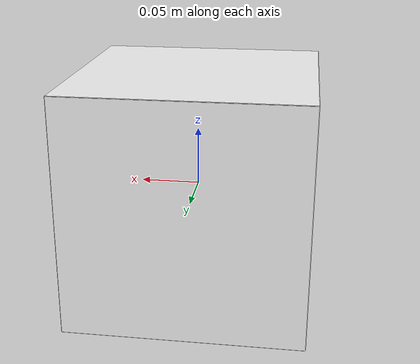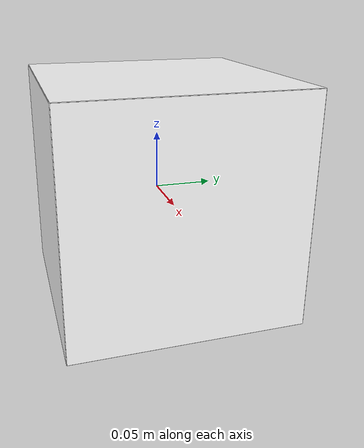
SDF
<?xml version="1.0"?>
<sdf version="1.4">
  <model name="calibration_box">
    <static>true</static>
    <link name="calibration_box_link">
      <!-- these is the box faces -->

      <!-- face0 -->
      <collision name="face0_collision">
        <pose>0 0 0.1 0 0 0</pose>
        <geometry>
          <box>
            <size>0.2 0.2 0.001</size>
          </box>
        </geometry>
      </collision>
      <visual name="face0_visual">
        <pose>0 0 0.1 0 0 0</pose>
        <geometry>
          <box>
            <size>0.2 0.2 0.001</size>
          </box>
        </geometry>
        <material>
          <ambient>1 1 1 1</ambient>
          <diffuse>1 1 1 1</diffuse>
          <script>
            <uri>model://calibration_box/materials/scripts</uri>
            <uri>model://calibration_box/materials/textures</uri>
            <name>ArcuoFace0</name>
          </script>
        </material>
      </visual>

      <!-- face1 -->
      <collision name="face1_collision">
        <pose>0 0 -0.1 0 0 0</pose>
        <geometry>
          <box>
            <size>0.2 0.2 0.001</size>
          </box>
        </geometry>
      </collision>
      <visual name="face1_visual">
        <pose>0 0 -0.1 0 0 0</pose>
        <geometry>
          <box>
            <size>0.2 0.2 0.001</size>
          </box>
        </geometry>
        <material>
          <ambient>1 1 1 1</ambient>
          <diffuse>1 1 1 1</diffuse>
          <script>
            <uri>model://calibration_box/materials/scripts</uri>
            <uri>model://calibration_box/materials/textures</uri>
            <name>ArcuoFace1</name>
          </script>
        </material>
      </visual>

      <!-- face2 -->
      <collision name="face2_collision">
        <pose>0.1 0 0 0 0 0</pose>
        <geometry>
          <box>
            <size>0.001 0.2 0.2</size>
          </box>
        </geometry>
      </collision>
      <visual name="face2_visual">
        <pose>0.1 0 0 0 0 0</pose>
        <geometry>
          <box>
            <size>0.001 0.2 0.2</size>
          </box>
        </geometry>
        <material>
          <ambient>1 1 1 1</ambient>
          <diffuse>1 1 1 1</diffuse>
          <script>
            <uri>model://calibration_box/materials/scripts</uri>
            <uri>model://calibration_box/materials/textures</uri>
            <name>ArcuoFace2</name>
          </script>
        </material>
      </visual>

      <!-- face3 -->
      <collision name="face3_collision">
        <pose>-0.1 0 0 0 0 0</pose>
        <geometry>
          <box>
            <size>0.001 0.2 0.2</size>
          </box>
        </geometry>
      </collision>
      <visual name="face3_visual">
        <pose>-0.1 0 0 0 0 0</pose>
        <geometry>
          <box>
            <size>0.001 0.2 0.2</size>
          </box>
        </geometry>
        <material>
          <ambient>1 1 1 1</ambient>
          <diffuse>1 1 1 1</diffuse>
          <script>
            <uri>model://calibration_box/materials/scripts</uri>
            <uri>model://calibration_box/materials/textures</uri>
            <name>ArcuoFace3</name>
          </script>
        </material>
      </visual>

      <!-- face4 -->
      <collision name="face4_collision">
        <pose>0 0.1 0 0 0 0</pose>
        <geometry>
          <box>
            <size>0.2 0.001 0.2</size>
          </box>
        </geometry>
      </collision>
      <visual name="face4_visual">
        <pose>0 0.1 0 0 0 0</pose>
        <geometry>
          <box>
            <size>0.2 0.001 0.2</size>
          </box>
        </geometry>
        <material>
          <ambient>1 1 1 1</ambient>
          <diffuse>1 1 1 1</diffuse>
          <script>
            <uri>model://calibration_box/materials/scripts</uri>
            <uri>model://calibration_box/materials/textures</uri>
            <name>ArcuoFace4</name>
          </script>
        </material>
      </visual>

      <!-- face5 -->
      <collision name="face5_collision">
        <pose>0 -0.1 0 0 0 0</pose>
        <geometry>
          <box>
            <size>0.2 0.001 0.2</size>
          </box>
        </geometry>
      </collision>
      <visual name="face5_visual">
        <pose>0 -0.1 0 0 0 0</pose>
        <geometry>
          <box>
            <size>0.2 0.001 0.2</size>
          </box>
        </geometry>
        <material>
          <ambient>1 1 1 1</ambient>
          <diffuse>1 1 1 1</diffuse>
          <script>
            <uri>model://calibration_box/materials/scripts</uri>
            <uri>model://calibration_box/materials/textures</uri>
            <name>ArcuoFace5</name>
          </script>
        </material>
      </visual>

    </link>
  </model>
</sdf>
